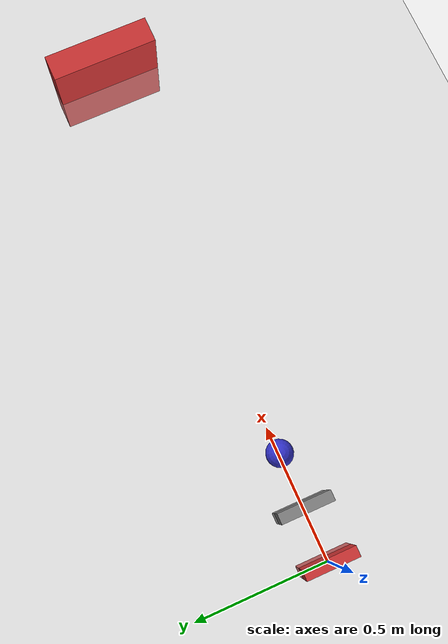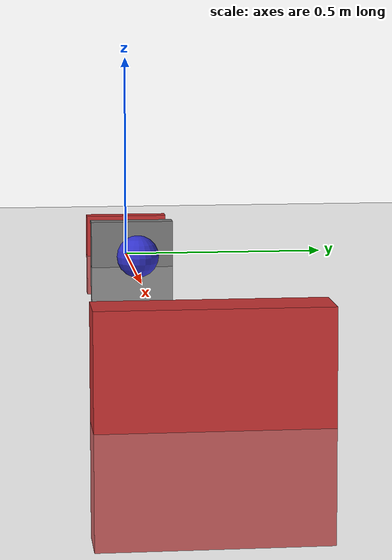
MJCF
<mujoco model="horizontal_spring_ball">
    <compiler angle="degree" coordinate="local" />
    <option gravity="0 0 -9.81" /> <!-- Gravity in the negative z-direction -->

    <!-- Default settings for bodies, joints, and geom properties -->
    <default>
        <joint damping="0.5" limited="true"/>
        <geom density="1000" friction="0.5 0.1 0.1"/>
    </default>

    <!-- World body -->
    <worldbody>
        <light directional="true" cutoff="4" exponent="20" diffuse="1 1 1" specular="0 0 0" pos=".9 .3 2.5" dir="-.9 -.3 -2.5 "/>
        <camera name="cam1" pos="0.000 -5.943 5.943" xyaxes="1.000 -0.000 0.000 0.000 0.707 0.707"/>

        <!-- Ground plane -->
        <geom name="ground" type="plane" size="0 0 0.1" rgba="0.8 0.8 0.8 1"/>

        <!-- A fixed wall-->
        <body name="wall" pos="2 0 0">
            <!-- Geom representing the wall -->
            <geom name="wall_geom" type="box" size="0.05 0.2 0.2" rgba="0.8 0.2 0.2 1"/>
        </body>

        <!-- A fixed body to attach the spring to -->
        <body name="base" pos="0 0 0">
            <!-- Geom representing the base -->
            <geom name="base_geom" type="box" size="0.02 0.1 0.1" rgba="0.8 0.2 0.2 1"/>
        </body>

        <!-- Placeholder cuboidal mass body, representing the spring anchor -->
        <body name="small_mass" pos="0.2 0 0.01"> <!-- Adjusted position -->
            <!-- Cuboidal mass geometry (slender shape) -->
            <geom name="mass_geom" type="box" size="0.02 0.1 0.1" mass="0.01" rgba="0.5 0.5 0.5 1"/>

            <!-- Joint for the mass to allow movement along the x-axis -->
            <joint name="mass_joint" type="slide" axis="1 0 0" range="-1 1" stiffness="20" />
        </body>

        <!-- Free-moving ball body -->
        <body name="ball" pos="0.4 0 0.05"> <!-- Positioned above the ground -->
            <!-- Ball geometry -->
            <geom name="ball_geom" type="sphere" size="0.05" mass="0.02" rgba="0.2 0.2 0.8 1"/>

            <!-- Ball joint allowing movement along the x-axis -->
            <joint name="ball_slide" type="slide" axis="1 0 0" range="-10 10"/>
        </body>
    </worldbody>

    <!-- Actuator applying force at the center of mass of the ball along the x-axis -->
    <actuator>
        <motor joint="ball_slide" forcerange="-20 20" ctrlrange="-10 10"/>
    </actuator>
</mujoco>
